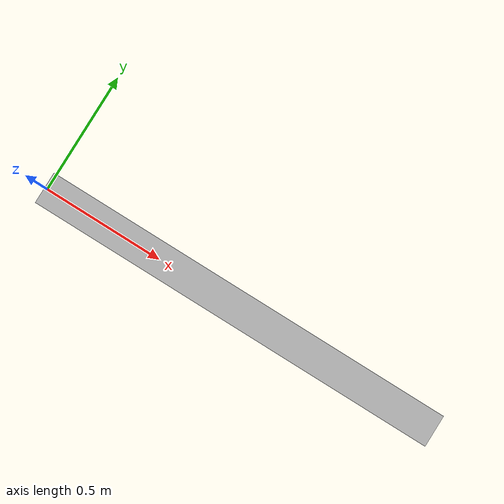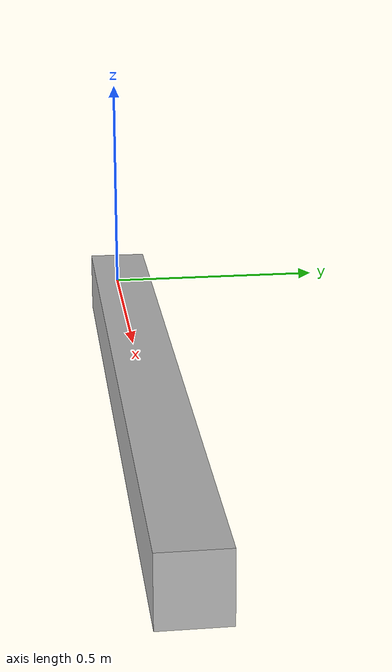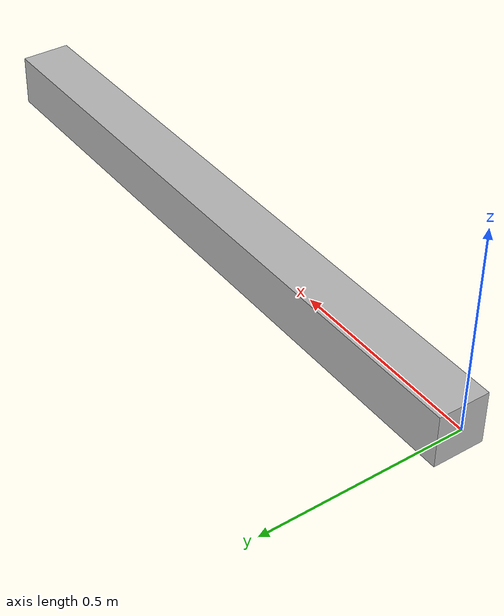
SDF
<?xml version='1.0' ?>
<sdf version='1.5'>
    <model name="takeoff_plat">
	 <static>true</static>
    	<link name='base_link_0'>
            <pose>0.85 0 0 0 0 0</pose>
            <inertial>
                <mass>0.1</mass>
                <inertia>
                    <ixx>0.0009</ixx>
                    <ixy>0</ixy>
                    <ixz>0</ixz>
                    <iyy>0.0069</iyy>
                    <iyz>0</iyz>
                    <izz>0.0063</izz>
                </inertia>
            </inertial>
            <collision name='base_collision_0'>
                <geometry>
                    <box>
                        <size>1.70 0.13 0.135</size>
                    </box>
                </geometry>
                <surface>
                  <friction>
                    <ode>
                        <mu>1</mu>
                        <mu2>1</mu2>
                    </ode>
                  </friction>
                </surface>
            </collision>
            <visual name='base_visual_0'>
                <geometry>
                    <box>
                        <size>1.70 0.13 0.135</size>
                    </box>
                    <mesh>
                        <uri>model://Box/meshes/Box.dae</uri>
                    </mesh>
                </geometry>
		<material>
		<script>
		  <uri>model://takeoff_plat/materials/scripts</uri>
		  <uri>model://takeoff_plat/materials/textures/</uri>
		  <name>TakeoffPlat/Image</name>
		</script>
		</material>
            </visual>
            <gravity>1</gravity>
        </link>

        <!-- linking them together -->

    </model>
</sdf>
